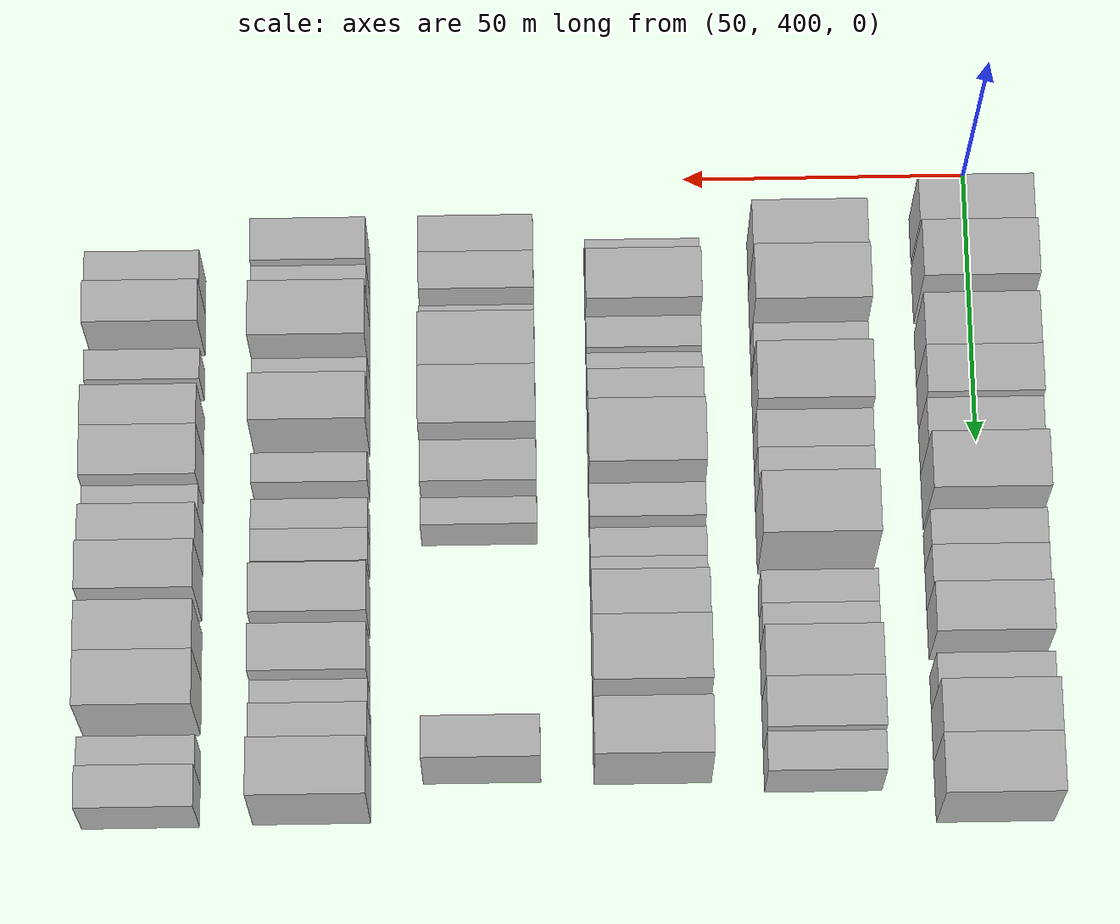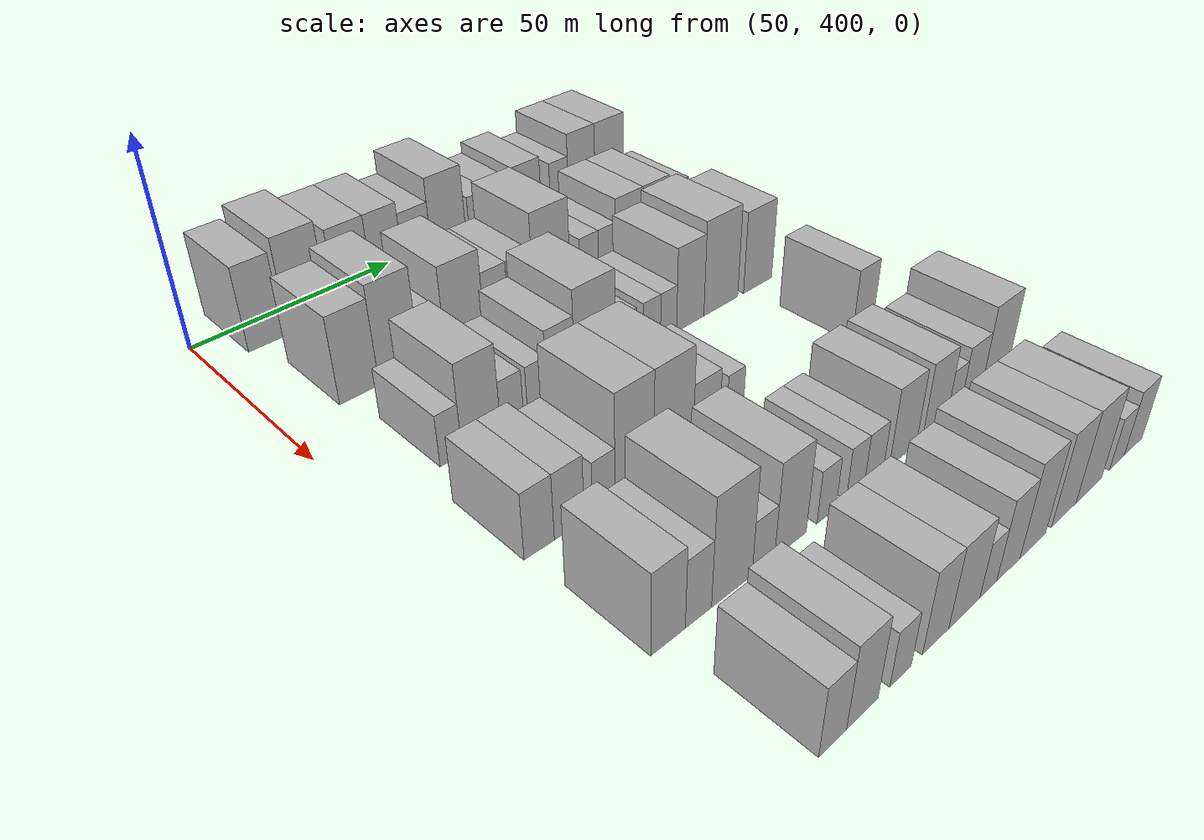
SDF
<sdf version="1.6">
 <world name="default">
  <model name="building_106">
   <static>1</static>
   <pose>50.0000 412.4515 0 0.000000 0.000000 0.000000</pose>
   <link name="link">
    <pose>0 0 10.50 0 0 0</pose>
    <collision name="collision"><geometry><box><size>20.0000 8.4818 21.0000</size></box></geometry></collision>
    <visual name="visual">
     <cast_shadows>0</cast_shadows>
     <geometry><box><size>20.0000 8.4818 21.0000</size></box></geometry>
     <material>
      <script>
       <uri>model://HANNAS_wall/materials/scripts</uri>
       <uri>model://HANNAS_wall/materials/textures</uri>
       <name>vrc/HANNAS_wall</name>
      </script>
     </material>
    </visual>
   </link>
  </model>
  <model name="building_107">
   <static>1</static>
   <pose>50.0000 422.8290 0 0.000000 0.000000 0.000000</pose>
   <link name="link">
    <pose>0 0 12.00 0 0 0</pose>
    <collision name="collision"><geometry><box><size>20.0000 10.2733 24.0000</size></box></geometry></collision>
    <visual name="visual">
     <cast_shadows>0</cast_shadows>
     <geometry><box><size>20.0000 10.2733 24.0000</size></box></geometry>
     <material>
      <script>
       <uri>model://HANNAS_wall/materials/scripts</uri>
       <uri>model://HANNAS_wall/materials/textures</uri>
       <name>vrc/HANNAS_wall</name>
      </script>
     </material>
    </visual>
   </link>
  </model>
  <model name="building_108">
   <static>1</static>
   <pose>50.0000 434.7328 0 0.000000 0.000000 0.000000</pose>
   <link name="link">
    <pose>0 0 10.50 0 0 0</pose>
    <collision name="collision"><geometry><box><size>20.0000 9.5341 21.0000</size></box></geometry></collision>
    <visual name="visual">
     <cast_shadows>0</cast_shadows>
     <geometry><box><size>20.0000 9.5341 21.0000</size></box></geometry>
     <material>
      <script>
       <uri>model://HANNAS_wall/materials/scripts</uri>
       <uri>model://HANNAS_wall/materials/textures</uri>
       <name>vrc/HANNAS_wall</name>
      </script>
     </material>
    </visual>
   </link>
  </model>
  <model name="building_109">
   <static>1</static>
   <pose>50.0000 443.7743 0 0.000000 0.000000 0.000000</pose>
   <link name="link">
    <pose>0 0 10.50 0 0 0</pose>
    <collision name="collision"><geometry><box><size>20.0000 8.5490 21.0000</size></box></geometry></collision>
    <visual name="visual">
     <cast_shadows>0</cast_shadows>
     <geometry><box><size>20.0000 8.5490 21.0000</size></box></geometry>
     <material>
      <script>
       <uri>model://HANNAS_wall/materials/scripts</uri>
       <uri>model://HANNAS_wall/materials/textures</uri>
       <name>vrc/HANNAS_wall</name>
      </script>
     </material>
    </visual>
   </link>
  </model>
  <model name="building_110">
   <static>1</static>
   <pose>50.0000 452.0813 0 0.000000 0.000000 0.000000</pose>
   <link name="link">
    <pose>0 0 9.00 0 0 0</pose>
    <collision name="collision"><geometry><box><size>20.0000 8.0650 18.0000</size></box></geometry></collision>
    <visual name="visual">
     <cast_shadows>0</cast_shadows>
     <geometry><box><size>20.0000 8.0650 18.0000</size></box></geometry>
     <material>
      <script>
       <uri>model://HANNAS_wall/materials/scripts</uri>
       <uri>model://HANNAS_wall/materials/textures</uri>
       <name>vrc/HANNAS_wall</name>
      </script>
     </material>
    </visual>
   </link>
  </model>
  <model name="building_111">
   <static>1</static>
   <pose>50.0000 461.1179 0 0.000000 0.000000 0.000000</pose>
   <link name="link">
    <pose>0 0 12.00 0 0 0</pose>
    <collision name="collision"><geometry><box><size>20.0000 10.0083 24.0000</size></box></geometry></collision>
    <visual name="visual">
     <cast_shadows>0</cast_shadows>
     <geometry><box><size>20.0000 10.0083 24.0000</size></box></geometry>
     <material>
      <script>
       <uri>model://HANNAS_wall/materials/scripts</uri>
       <uri>model://HANNAS_wall/materials/textures</uri>
       <name>vrc/HANNAS_wall</name>
      </script>
     </material>
    </visual>
   </link>
  </model>
  <model name="building_112">
   <static>1</static>
   <pose>50.0000 470.2347 0 0.000000 0.000000 0.000000</pose>
   <link name="link">
    <pose>0 0 7.50 0 0 0</pose>
    <collision name="collision"><geometry><box><size>20.0000 6.2252 15.0000</size></box></geometry></collision>
    <visual name="visual">
     <cast_shadows>0</cast_shadows>
     <geometry><box><size>20.0000 6.2252 15.0000</size></box></geometry>
     <material>
      <script>
       <uri>model://HANNAS_wall/materials/scripts</uri>
       <uri>model://HANNAS_wall/materials/textures</uri>
       <name>vrc/HANNAS_wall</name>
      </script>
     </material>
    </visual>
   </link>
  </model>
  <model name="building_113">
   <static>1</static>
   <pose>50.0000 477.0896 0 0.000000 0.000000 0.000000</pose>
   <link name="link">
    <pose>0 0 7.50 0 0 0</pose>
    <collision name="collision"><geometry><box><size>20.0000 7.4847 15.0000</size></box></geometry></collision>
    <visual name="visual">
     <cast_shadows>0</cast_shadows>
     <geometry><box><size>20.0000 7.4847 15.0000</size></box></geometry>
     <material>
      <script>
       <uri>model://HANNAS_wall/materials/scripts</uri>
       <uri>model://HANNAS_wall/materials/textures</uri>
       <name>vrc/HANNAS_wall</name>
      </script>
     </material>
    </visual>
   </link>
  </model>
  <model name="building_114">
   <static>1</static>
   <pose>50.0000 485.1602 0 0.000000 0.000000 0.000000</pose>
   <link name="link">
    <pose>0 0 9.00 0 0 0</pose>
    <collision name="collision"><geometry><box><size>20.0000 8.6565 18.0000</size></box></geometry></collision>
    <visual name="visual">
     <cast_shadows>0</cast_shadows>
     <geometry><box><size>20.0000 8.6565 18.0000</size></box></geometry>
     <material>
      <script>
       <uri>model://HANNAS_wall/materials/scripts</uri>
       <uri>model://HANNAS_wall/materials/textures</uri>
       <name>vrc/HANNAS_wall</name>
      </script>
     </material>
    </visual>
   </link>
  </model>
  <model name="building_115">
   <static>1</static>
   <pose>50.0000 495.5415 0 0.000000 0.000000 0.000000</pose>
   <link name="link">
    <pose>0 0 7.50 0 0 0</pose>
    <collision name="collision"><geometry><box><size>20.0000 6.1060 15.0000</size></box></geometry></collision>
    <visual name="visual">
     <cast_shadows>0</cast_shadows>
     <geometry><box><size>20.0000 6.1060 15.0000</size></box></geometry>
     <material>
      <script>
       <uri>model://HANNAS_wall/materials/scripts</uri>
       <uri>model://HANNAS_wall/materials/textures</uri>
       <name>vrc/HANNAS_wall</name>
      </script>
     </material>
    </visual>
   </link>
  </model>
  <model name="building_116">
   <static>1</static>
   <pose>50.0000 503.2018 0 0.000000 0.000000 0.000000</pose>
   <link name="link">
    <pose>0 0 10.50 0 0 0</pose>
    <collision name="collision"><geometry><box><size>20.0000 9.2146 21.0000</size></box></geometry></collision>
    <visual name="visual">
     <cast_shadows>0</cast_shadows>
     <geometry><box><size>20.0000 9.2146 21.0000</size></box></geometry>
     <material>
      <script>
       <uri>model://HANNAS_wall/materials/scripts</uri>
       <uri>model://HANNAS_wall/materials/textures</uri>
       <name>vrc/HANNAS_wall</name>
      </script>
     </material>
    </visual>
   </link>
  </model>
  <model name="building_117">
   <static>1</static>
   <pose>50.0000 512.9678 0 0.000000 0.000000 0.000000</pose>
   <link name="link">
    <pose>0 0 10.50 0 0 0</pose>
    <collision name="collision"><geometry><box><size>20.0000 10.3173 21.0000</size></box></geometry></collision>
    <visual name="visual">
     <cast_shadows>0</cast_shadows>
     <geometry><box><size>20.0000 10.3173 21.0000</size></box></geometry>
     <material>
      <script>
       <uri>model://HANNAS_wall/materials/scripts</uri>
       <uri>model://HANNAS_wall/materials/textures</uri>
       <name>vrc/HANNAS_wall</name>
      </script>
     </material>
    </visual>
   </link>
  </model>
  <model name="building_220">
   <static>1</static>
   <pose>79.0000 417.0556 0 0.000000 0.000000 0.000000</pose>
   <link name="link">
    <pose>0 0 10.50 0 0 0</pose>
    <collision name="collision"><geometry><box><size>20.0000 9.2861 21.0000</size></box></geometry></collision>
    <visual name="visual">
     <cast_shadows>0</cast_shadows>
     <geometry><box><size>20.0000 9.2861 21.0000</size></box></geometry>
     <material>
      <script>
       <uri>model://HANNAS_wall/materials/scripts</uri>
       <uri>model://HANNAS_wall/materials/textures</uri>
       <name>vrc/HANNAS_wall</name>
      </script>
     </material>
    </visual>
   </link>
  </model>
  <model name="building_221">
   <static>1</static>
   <pose>79.0000 426.7395 0 0.000000 0.000000 0.000000</pose>
   <link name="link">
    <pose>0 0 12.00 0 0 0</pose>
    <collision name="collision"><geometry><box><size>20.0000 10.0817 24.0000</size></box></geometry></collision>
    <visual name="visual">
     <cast_shadows>0</cast_shadows>
     <geometry><box><size>20.0000 10.0817 24.0000</size></box></geometry>
     <material>
      <script>
       <uri>model://HANNAS_wall/materials/scripts</uri>
       <uri>model://HANNAS_wall/materials/textures</uri>
       <name>vrc/HANNAS_wall</name>
      </script>
     </material>
    </visual>
   </link>
  </model>
  <model name="building_222">
   <static>1</static>
   <pose>79.0000 434.5513 0 0.000000 0.000000 0.000000</pose>
   <link name="link">
    <pose>0 0 6.00 0 0 0</pose>
    <collision name="collision"><geometry><box><size>20.0000 5.5419 12.0000</size></box></geometry></collision>
    <visual name="visual">
     <cast_shadows>0</cast_shadows>
     <geometry><box><size>20.0000 5.5419 12.0000</size></box></geometry>
     <material>
      <script>
       <uri>model://HANNAS_wall/materials/scripts</uri>
       <uri>model://HANNAS_wall/materials/textures</uri>
       <name>vrc/HANNAS_wall</name>
      </script>
     </material>
    </visual>
   </link>
  </model>
  <model name="building_223">
   <static>1</static>
   <pose>79.0000 443.5348 0 0.000000 0.000000 0.000000</pose>
   <link name="link">
    <pose>0 0 10.50 0 0 0</pose>
    <collision name="collision"><geometry><box><size>20.0000 10.4250 21.0000</size></box></geometry></collision>
    <visual name="visual">
     <cast_shadows>0</cast_shadows>
     <geometry><box><size>20.0000 10.4250 21.0000</size></box></geometry>
     <material>
      <script>
       <uri>model://HANNAS_wall/materials/scripts</uri>
       <uri>model://HANNAS_wall/materials/textures</uri>
       <name>vrc/HANNAS_wall</name>
      </script>
     </material>
    </visual>
   </link>
  </model>
  <model name="building_224">
   <static>1</static>
   <pose>79.0000 452.1346 0 0.000000 0.000000 0.000000</pose>
   <link name="link">
    <pose>0 0 7.50 0 0 0</pose>
    <collision name="collision"><geometry><box><size>20.0000 6.7746 15.0000</size></box></geometry></collision>
    <visual name="visual">
     <cast_shadows>0</cast_shadows>
     <geometry><box><size>20.0000 6.7746 15.0000</size></box></geometry>
     <material>
      <script>
       <uri>model://HANNAS_wall/materials/scripts</uri>
       <uri>model://HANNAS_wall/materials/textures</uri>
       <name>vrc/HANNAS_wall</name>
      </script>
     </material>
    </visual>
   </link>
  </model>
  <model name="building_225">
   <static>1</static>
   <pose>79.0000 459.1024 0 0.000000 0.000000 0.000000</pose>
   <link name="link">
    <pose>0 0 7.50 0 0 0</pose>
    <collision name="collision"><geometry><box><size>20.0000 7.1611 15.0000</size></box></geometry></collision>
    <visual name="visual">
     <cast_shadows>0</cast_shadows>
     <geometry><box><size>20.0000 7.1611 15.0000</size></box></geometry>
     <material>
      <script>
       <uri>model://HANNAS_wall/materials/scripts</uri>
       <uri>model://HANNAS_wall/materials/textures</uri>
       <name>vrc/HANNAS_wall</name>
      </script>
     </material>
    </visual>
   </link>
  </model>
  <model name="building_226">
   <static>1</static>
   <pose>79.0000 468.1412 0 0.000000 0.000000 0.000000</pose>
   <link name="link">
    <pose>0 0 12.00 0 0 0</pose>
    <collision name="collision"><geometry><box><size>20.0000 10.9166 24.0000</size></box></geometry></collision>
    <visual name="visual">
     <cast_shadows>0</cast_shadows>
     <geometry><box><size>20.0000 10.9166 24.0000</size></box></geometry>
     <material>
      <script>
       <uri>model://HANNAS_wall/materials/scripts</uri>
       <uri>model://HANNAS_wall/materials/textures</uri>
       <name>vrc/HANNAS_wall</name>
      </script>
     </material>
    </visual>
   </link>
  </model>
  <model name="building_227">
   <static>1</static>
   <pose>79.0000 479.4898 0 0.000000 0.000000 0.000000</pose>
   <link name="link">
    <pose>0 0 6.00 0 0 0</pose>
    <collision name="collision"><geometry><box><size>20.0000 5.7805 12.0000</size></box></geometry></collision>
    <visual name="visual">
     <cast_shadows>0</cast_shadows>
     <geometry><box><size>20.0000 5.7805 12.0000</size></box></geometry>
     <material>
      <script>
       <uri>model://HANNAS_wall/materials/scripts</uri>
       <uri>model://HANNAS_wall/materials/textures</uri>
       <name>vrc/HANNAS_wall</name>
      </script>
     </material>
    </visual>
   </link>
  </model>
  <model name="building_228">
   <static>1</static>
   <pose>79.0000 485.1522 0 0.000000 0.000000 0.000000</pose>
   <link name="link">
    <pose>0 0 6.00 0 0 0</pose>
    <collision name="collision"><geometry><box><size>20.0000 5.5443 12.0000</size></box></geometry></collision>
    <visual name="visual">
     <cast_shadows>0</cast_shadows>
     <geometry><box><size>20.0000 5.5443 12.0000</size></box></geometry>
     <material>
      <script>
       <uri>model://HANNAS_wall/materials/scripts</uri>
       <uri>model://HANNAS_wall/materials/textures</uri>
       <name>vrc/HANNAS_wall</name>
      </script>
     </material>
    </visual>
   </link>
  </model>
  <model name="building_229">
   <static>1</static>
   <pose>79.0000 492.4060 0 0.000000 0.000000 0.000000</pose>
   <link name="link">
    <pose>0 0 9.00 0 0 0</pose>
    <collision name="collision"><geometry><box><size>20.0000 8.9632 18.0000</size></box></geometry></collision>
    <visual name="visual">
     <cast_shadows>0</cast_shadows>
     <geometry><box><size>20.0000 8.9632 18.0000</size></box></geometry>
     <material>
      <script>
       <uri>model://HANNAS_wall/materials/scripts</uri>
       <uri>model://HANNAS_wall/materials/textures</uri>
       <name>vrc/HANNAS_wall</name>
      </script>
     </material>
    </visual>
   </link>
  </model>
  <model name="building_230">
   <static>1</static>
   <pose>79.0000 501.2691 0 0.000000 0.000000 0.000000</pose>
   <link name="link">
    <pose>0 0 9.00 0 0 0</pose>
    <collision name="collision"><geometry><box><size>20.0000 8.7631 18.0000</size></box></geometry></collision>
    <visual name="visual">
     <cast_shadows>0</cast_shadows>
     <geometry><box><size>20.0000 8.7631 18.0000</size></box></geometry>
     <material>
      <script>
       <uri>model://HANNAS_wall/materials/scripts</uri>
       <uri>model://HANNAS_wall/materials/textures</uri>
       <name>vrc/HANNAS_wall</name>
      </script>
     </material>
    </visual>
   </link>
  </model>
  <model name="building_231">
   <static>1</static>
   <pose>79.0000 509.0320 0 0.000000 0.000000 0.000000</pose>
   <link name="link">
    <pose>0 0 7.50 0 0 0</pose>
    <collision name="collision"><geometry><box><size>20.0000 6.7628 15.0000</size></box></geometry></collision>
    <visual name="visual">
     <cast_shadows>0</cast_shadows>
     <geometry><box><size>20.0000 6.7628 15.0000</size></box></geometry>
     <material>
      <script>
       <uri>model://HANNAS_wall/materials/scripts</uri>
       <uri>model://HANNAS_wall/materials/textures</uri>
       <name>vrc/HANNAS_wall</name>
      </script>
     </material>
    </visual>
   </link>
  </model>
  <model name="building_329">
   <static>1</static>
   <pose>108.0000 418.3809 0 0.000000 0.000000 0.000000</pose>
   <link name="link">
    <pose>0 0 6.00 0 0 0</pose>
    <collision name="collision"><geometry><box><size>20.0000 5.0788 12.0000</size></box></geometry></collision>
    <visual name="visual">
     <cast_shadows>0</cast_shadows>
     <geometry><box><size>20.0000 5.0788 12.0000</size></box></geometry>
     <material>
      <script>
       <uri>model://HANNAS_wall/materials/scripts</uri>
       <uri>model://HANNAS_wall/materials/textures</uri>
       <name>vrc/HANNAS_wall</name>
      </script>
     </material>
    </visual>
   </link>
  </model>
  <model name="building_330">
   <static>1</static>
   <pose>108.0000 425.5419 0 0.000000 0.000000 0.000000</pose>
   <link name="link">
    <pose>0 0 10.50 0 0 0</pose>
    <collision name="collision"><geometry><box><size>20.0000 9.2431 21.0000</size></box></geometry></collision>
    <visual name="visual">
     <cast_shadows>0</cast_shadows>
     <geometry><box><size>20.0000 9.2431 21.0000</size></box></geometry>
     <material>
      <script>
       <uri>model://HANNAS_wall/materials/scripts</uri>
       <uri>model://HANNAS_wall/materials/textures</uri>
       <name>vrc/HANNAS_wall</name>
      </script>
     </material>
    </visual>
   </link>
  </model>
  <model name="building_331">
   <static>1</static>
   <pose>108.0000 433.0068 0 0.000000 0.000000 0.000000</pose>
   <link name="link">
    <pose>0 0 6.00 0 0 0</pose>
    <collision name="collision"><geometry><box><size>20.0000 5.6867 12.0000</size></box></geometry></collision>
    <visual name="visual">
     <cast_shadows>0</cast_shadows>
     <geometry><box><size>20.0000 5.6867 12.0000</size></box></geometry>
     <material>
      <script>
       <uri>model://HANNAS_wall/materials/scripts</uri>
       <uri>model://HANNAS_wall/materials/textures</uri>
       <name>vrc/HANNAS_wall</name>
      </script>
     </material>
    </visual>
   </link>
  </model>
  <model name="building_332">
   <static>1</static>
   <pose>108.0000 439.3662 0 0.000000 0.000000 0.000000</pose>
   <link name="link">
    <pose>0 0 6.00 0 0 0</pose>
    <collision name="collision"><geometry><box><size>20.0000 5.0320 12.0000</size></box></geometry></collision>
    <visual name="visual">
     <cast_shadows>0</cast_shadows>
     <geometry><box><size>20.0000 5.0320 12.0000</size></box></geometry>
     <material>
      <script>
       <uri>model://HANNAS_wall/materials/scripts</uri>
       <uri>model://HANNAS_wall/materials/textures</uri>
       <name>vrc/HANNAS_wall</name>
      </script>
     </material>
    </visual>
   </link>
  </model>
  <model name="building_333">
   <static>1</static>
   <pose>108.0000 445.5948 0 0.000000 0.000000 0.000000</pose>
   <link name="link">
    <pose>0 0 9.00 0 0 0</pose>
    <collision name="collision"><geometry><box><size>20.0000 7.4253 18.0000</size></box></geometry></collision>
    <visual name="visual">
     <cast_shadows>0</cast_shadows>
     <geometry><box><size>20.0000 7.4253 18.0000</size></box></geometry>
     <material>
      <script>
       <uri>model://HANNAS_wall/materials/scripts</uri>
       <uri>model://HANNAS_wall/materials/textures</uri>
       <name>vrc/HANNAS_wall</name>
      </script>
     </material>
    </visual>
   </link>
  </model>
  <model name="building_334">
   <static>1</static>
   <pose>108.0000 454.9486 0 0.000000 0.000000 0.000000</pose>
   <link name="link">
    <pose>0 0 12.00 0 0 0</pose>
    <collision name="collision"><geometry><box><size>20.0000 11.2823 24.0000</size></box></geometry></collision>
    <visual name="visual">
     <cast_shadows>0</cast_shadows>
     <geometry><box><size>20.0000 11.2823 24.0000</size></box></geometry>
     <material>
      <script>
       <uri>model://HANNAS_wall/materials/scripts</uri>
       <uri>model://HANNAS_wall/materials/textures</uri>
       <name>vrc/HANNAS_wall</name>
      </script>
     </material>
    </visual>
   </link>
  </model>
  <model name="building_335">
   <static>1</static>
   <pose>108.0000 463.5766 0 0.000000 0.000000 0.000000</pose>
   <link name="link">
    <pose>0 0 6.00 0 0 0</pose>
    <collision name="collision"><geometry><box><size>20.0000 5.9738 12.0000</size></box></geometry></collision>
    <visual name="visual">
     <cast_shadows>0</cast_shadows>
     <geometry><box><size>20.0000 5.9738 12.0000</size></box></geometry>
     <material>
      <script>
       <uri>model://HANNAS_wall/materials/scripts</uri>
       <uri>model://HANNAS_wall/materials/textures</uri>
       <name>vrc/HANNAS_wall</name>
      </script>
     </material>
    </visual>
   </link>
  </model>
  <model name="building_336">
   <static>1</static>
   <pose>108.0000 471.1448 0 0.000000 0.000000 0.000000</pose>
   <link name="link">
    <pose>0 0 6.00 0 0 0</pose>
    <collision name="collision"><geometry><box><size>20.0000 5.1626 12.0000</size></box></geometry></collision>
    <visual name="visual">
     <cast_shadows>0</cast_shadows>
     <geometry><box><size>20.0000 5.1626 12.0000</size></box></geometry>
     <material>
      <script>
       <uri>model://HANNAS_wall/materials/scripts</uri>
       <uri>model://HANNAS_wall/materials/textures</uri>
       <name>vrc/HANNAS_wall</name>
      </script>
     </material>
    </visual>
   </link>
  </model>
  <model name="building_337">
   <static>1</static>
   <pose>108.0000 476.2127 0 0.000000 0.000000 0.000000</pose>
   <link name="link">
    <pose>0 0 6.00 0 0 0</pose>
    <collision name="collision"><geometry><box><size>20.0000 4.9732 12.0000</size></box></geometry></collision>
    <visual name="visual">
     <cast_shadows>0</cast_shadows>
     <geometry><box><size>20.0000 4.9732 12.0000</size></box></geometry>
     <material>
      <script>
       <uri>model://HANNAS_wall/materials/scripts</uri>
       <uri>model://HANNAS_wall/materials/textures</uri>
       <name>vrc/HANNAS_wall</name>
      </script>
     </material>
    </visual>
   </link>
  </model>
  <model name="building_338">
   <static>1</static>
   <pose>108.0000 483.0441 0 0.000000 0.000000 0.000000</pose>
   <link name="link">
    <pose>0 0 10.50 0 0 0</pose>
    <collision name="collision"><geometry><box><size>20.0000 8.6895 21.0000</size></box></geometry></collision>
    <visual name="visual">
     <cast_shadows>0</cast_shadows>
     <geometry><box><size>20.0000 8.6895 21.0000</size></box></geometry>
     <material>
      <script>
       <uri>model://HANNAS_wall/materials/scripts</uri>
       <uri>model://HANNAS_wall/materials/textures</uri>
       <name>vrc/HANNAS_wall</name>
      </script>
     </material>
    </visual>
   </link>
  </model>
  <model name="building_339">
   <static>1</static>
   <pose>108.0000 493.0357 0 0.000000 0.000000 0.000000</pose>
   <link name="link">
    <pose>0 0 12.00 0 0 0</pose>
    <collision name="collision"><geometry><box><size>20.0000 11.2938 24.0000</size></box></geometry></collision>
    <visual name="visual">
     <cast_shadows>0</cast_shadows>
     <geometry><box><size>20.0000 11.2938 24.0000</size></box></geometry>
     <material>
      <script>
       <uri>model://HANNAS_wall/materials/scripts</uri>
       <uri>model://HANNAS_wall/materials/textures</uri>
       <name>vrc/HANNAS_wall</name>
      </script>
     </material>
    </visual>
   </link>
  </model>
  <model name="building_340">
   <static>1</static>
   <pose>108.0000 505.6306 0 0.000000 0.000000 0.000000</pose>
   <link name="link">
    <pose>0 0 10.50 0 0 0</pose>
    <collision name="collision"><geometry><box><size>20.0000 9.8961 21.0000</size></box></geometry></collision>
    <visual name="visual">
     <cast_shadows>0</cast_shadows>
     <geometry><box><size>20.0000 9.8961 21.0000</size></box></geometry>
     <material>
      <script>
       <uri>model://HANNAS_wall/materials/scripts</uri>
       <uri>model://HANNAS_wall/materials/textures</uri>
       <name>vrc/HANNAS_wall</name>
      </script>
     </material>
    </visual>
   </link>
  </model>
  <model name="building_454">
   <static>1</static>
   <pose>137.0000 415.4255 0 0.000000 0.000000 0.000000</pose>
   <link name="link">
    <pose>0 0 7.50 0 0 0</pose>
    <collision name="collision"><geometry><box><size>20.0000 6.7138 15.0000</size></box></geometry></collision>
    <visual name="visual">
     <cast_shadows>0</cast_shadows>
     <geometry><box><size>20.0000 6.7138 15.0000</size></box></geometry>
     <material>
      <script>
       <uri>model://HANNAS_wall/materials/scripts</uri>
       <uri>model://HANNAS_wall/materials/textures</uri>
       <name>vrc/HANNAS_wall</name>
      </script>
     </material>
    </visual>
   </link>
  </model>
  <model name="building_455">
   <static>1</static>
   <pose>137.0000 422.2251 0 0.000000 0.000000 0.000000</pose>
   <link name="link">
    <pose>0 0 7.50 0 0 0</pose>
    <collision name="collision"><geometry><box><size>20.0000 6.8852 15.0000</size></box></geometry></collision>
    <visual name="visual">
     <cast_shadows>0</cast_shadows>
     <geometry><box><size>20.0000 6.8852 15.0000</size></box></geometry>
     <material>
      <script>
       <uri>model://HANNAS_wall/materials/scripts</uri>
       <uri>model://HANNAS_wall/materials/textures</uri>
       <name>vrc/HANNAS_wall</name>
      </script>
     </material>
    </visual>
   </link>
  </model>
  <model name="building_456">
   <static>1</static>
   <pose>137.0000 430.4222 0 0.000000 0.000000 0.000000</pose>
   <link name="link">
    <pose>0 0 6.00 0 0 0</pose>
    <collision name="collision"><geometry><box><size>20.0000 5.5091 12.0000</size></box></geometry></collision>
    <visual name="visual">
     <cast_shadows>0</cast_shadows>
     <geometry><box><size>20.0000 5.5091 12.0000</size></box></geometry>
     <material>
      <script>
       <uri>model://HANNAS_wall/materials/scripts</uri>
       <uri>model://HANNAS_wall/materials/textures</uri>
       <name>vrc/HANNAS_wall</name>
      </script>
     </material>
    </visual>
   </link>
  </model>
  <model name="building_457">
   <static>1</static>
   <pose>137.0000 438.0184 0 0.000000 0.000000 0.000000</pose>
   <link name="link">
    <pose>0 0 12.00 0 0 0</pose>
    <collision name="collision"><geometry><box><size>20.0000 9.6834 24.0000</size></box></geometry></collision>
    <visual name="visual">
     <cast_shadows>0</cast_shadows>
     <geometry><box><size>20.0000 9.6834 24.0000</size></box></geometry>
     <material>
      <script>
       <uri>model://HANNAS_wall/materials/scripts</uri>
       <uri>model://HANNAS_wall/materials/textures</uri>
       <name>vrc/HANNAS_wall</name>
      </script>
     </material>
    </visual>
   </link>
  </model>
  <model name="building_458">
   <static>1</static>
   <pose>137.0000 448.0868 0 0.000000 0.000000 0.000000</pose>
   <link name="link">
    <pose>0 0 12.00 0 0 0</pose>
    <collision name="collision"><geometry><box><size>20.0000 10.4533 24.0000</size></box></geometry></collision>
    <visual name="visual">
     <cast_shadows>0</cast_shadows>
     <geometry><box><size>20.0000 10.4533 24.0000</size></box></geometry>
     <material>
      <script>
       <uri>model://HANNAS_wall/materials/scripts</uri>
       <uri>model://HANNAS_wall/materials/textures</uri>
       <name>vrc/HANNAS_wall</name>
      </script>
     </material>
    </visual>
   </link>
  </model>
  <model name="building_459">
   <static>1</static>
   <pose>137.0000 457.0089 0 0.000000 0.000000 0.000000</pose>
   <link name="link">
    <pose>0 0 7.50 0 0 0</pose>
    <collision name="collision"><geometry><box><size>20.0000 7.3909 15.0000</size></box></geometry></collision>
    <visual name="visual">
     <cast_shadows>0</cast_shadows>
     <geometry><box><size>20.0000 7.3909 15.0000</size></box></geometry>
     <material>
      <script>
       <uri>model://HANNAS_wall/materials/scripts</uri>
       <uri>model://HANNAS_wall/materials/textures</uri>
       <name>vrc/HANNAS_wall</name>
      </script>
     </material>
    </visual>
   </link>
  </model>
  <model name="building_460">
   <static>1</static>
   <pose>137.0000 465.1337 0 0.000000 0.000000 0.000000</pose>
   <link name="link">
    <pose>0 0 6.00 0 0 0</pose>
    <collision name="collision"><geometry><box><size>20.0000 4.8587 12.0000</size></box></geometry></collision>
    <visual name="visual">
     <cast_shadows>0</cast_shadows>
     <geometry><box><size>20.0000 4.8587 12.0000</size></box></geometry>
     <material>
      <script>
       <uri>model://HANNAS_wall/materials/scripts</uri>
       <uri>model://HANNAS_wall/materials/textures</uri>
       <name>vrc/HANNAS_wall</name>
      </script>
     </material>
    </visual>
   </link>
  </model>
  <model name="building_461">
   <static>1</static>
   <pose>137.0000 506.4132 0 0.000000 0.000000 0.000000</pose>
   <link name="link">
    <pose>0 0 9.00 0 0 0</pose>
    <collision name="collision"><geometry><box><size>20.0000 7.2335 18.0000</size></box></geometry></collision>
    <visual name="visual">
     <cast_shadows>0</cast_shadows>
     <geometry><box><size>20.0000 7.2335 18.0000</size></box></geometry>
     <material>
      <script>
       <uri>model://HANNAS_wall/materials/scripts</uri>
       <uri>model://HANNAS_wall/materials/textures</uri>
       <name>vrc/HANNAS_wall</name>
      </script>
     </material>
    </visual>
   </link>
  </model>
  <model name="building_573">
   <static>1</static>
   <pose>166.0000 417.1547 0 0.000000 0.000000 0.000000</pose>
   <link name="link">
    <pose>0 0 9.00 0 0 0</pose>
    <collision name="collision"><geometry><box><size>20.0000 7.6879 18.0000</size></box></geometry></collision>
    <visual name="visual">
     <cast_shadows>0</cast_shadows>
     <geometry><box><size>20.0000 7.6879 18.0000</size></box></geometry>
     <material>
      <script>
       <uri>model://HANNAS_wall/materials/scripts</uri>
       <uri>model://HANNAS_wall/materials/textures</uri>
       <name>vrc/HANNAS_wall</name>
      </script>
     </material>
    </visual>
   </link>
  </model>
  <model name="building_574">
   <static>1</static>
   <pose>166.0000 424.0381 0 0.000000 0.000000 0.000000</pose>
   <link name="link">
    <pose>0 0 7.50 0 0 0</pose>
    <collision name="collision"><geometry><box><size>20.0000 6.0789 15.0000</size></box></geometry></collision>
    <visual name="visual">
     <cast_shadows>0</cast_shadows>
     <geometry><box><size>20.0000 6.0789 15.0000</size></box></geometry>
     <material>
      <script>
       <uri>model://HANNAS_wall/materials/scripts</uri>
       <uri>model://HANNAS_wall/materials/textures</uri>
       <name>vrc/HANNAS_wall</name>
      </script>
     </material>
    </visual>
   </link>
  </model>
  <model name="building_575">
   <static>1</static>
   <pose>166.0000 432.0224 0 0.000000 0.000000 0.000000</pose>
   <link name="link">
    <pose>0 0 12.00 0 0 0</pose>
    <collision name="collision"><geometry><box><size>20.0000 9.8896 24.0000</size></box></geometry></collision>
    <visual name="visual">
     <cast_shadows>0</cast_shadows>
     <geometry><box><size>20.0000 9.8896 24.0000</size></box></geometry>
     <material>
      <script>
       <uri>model://HANNAS_wall/materials/scripts</uri>
       <uri>model://HANNAS_wall/materials/textures</uri>
       <name>vrc/HANNAS_wall</name>
      </script>
     </material>
    </visual>
   </link>
  </model>
  <model name="building_576">
   <static>1</static>
   <pose>166.0000 439.8486 0 0.000000 0.000000 0.000000</pose>
   <link name="link">
    <pose>0 0 6.00 0 0 0</pose>
    <collision name="collision"><geometry><box><size>20.0000 5.7628 12.0000</size></box></geometry></collision>
    <visual name="visual">
     <cast_shadows>0</cast_shadows>
     <geometry><box><size>20.0000 5.7628 12.0000</size></box></geometry>
     <material>
      <script>
       <uri>model://HANNAS_wall/materials/scripts</uri>
       <uri>model://HANNAS_wall/materials/textures</uri>
       <name>vrc/HANNAS_wall</name>
      </script>
     </material>
    </visual>
   </link>
  </model>
  <model name="building_577">
   <static>1</static>
   <pose>166.0000 446.9593 0 0.000000 0.000000 0.000000</pose>
   <link name="link">
    <pose>0 0 10.50 0 0 0</pose>
    <collision name="collision"><geometry><box><size>20.0000 8.4586 21.0000</size></box></geometry></collision>
    <visual name="visual">
     <cast_shadows>0</cast_shadows>
     <geometry><box><size>20.0000 8.4586 21.0000</size></box></geometry>
     <material>
      <script>
       <uri>model://HANNAS_wall/materials/scripts</uri>
       <uri>model://HANNAS_wall/materials/textures</uri>
       <name>vrc/HANNAS_wall</name>
      </script>
     </material>
    </visual>
   </link>
  </model>
  <model name="building_578">
   <static>1</static>
   <pose>166.0000 456.8562 0 0.000000 0.000000 0.000000</pose>
   <link name="link">
    <pose>0 0 6.00 0 0 0</pose>
    <collision name="collision"><geometry><box><size>20.0000 5.3350 12.0000</size></box></geometry></collision>
    <visual name="visual">
     <cast_shadows>0</cast_shadows>
     <geometry><box><size>20.0000 5.3350 12.0000</size></box></geometry>
     <material>
      <script>
       <uri>model://HANNAS_wall/materials/scripts</uri>
       <uri>model://HANNAS_wall/materials/textures</uri>
       <name>vrc/HANNAS_wall</name>
      </script>
     </material>
    </visual>
   </link>
  </model>
  <model name="building_579">
   <static>1</static>
   <pose>166.0000 465.1929 0 0.000000 0.000000 0.000000</pose>
   <link name="link">
    <pose>0 0 6.00 0 0 0</pose>
    <collision name="collision"><geometry><box><size>20.0000 5.3384 12.0000</size></box></geometry></collision>
    <visual name="visual">
     <cast_shadows>0</cast_shadows>
     <geometry><box><size>20.0000 5.3384 12.0000</size></box></geometry>
     <material>
      <script>
       <uri>model://HANNAS_wall/materials/scripts</uri>
       <uri>model://HANNAS_wall/materials/textures</uri>
       <name>vrc/HANNAS_wall</name>
      </script>
     </material>
    </visual>
   </link>
  </model>
  <model name="building_580">
   <static>1</static>
   <pose>166.0000 470.7612 0 0.000000 0.000000 0.000000</pose>
   <link name="link">
    <pose>0 0 6.00 0 0 0</pose>
    <collision name="collision"><geometry><box><size>20.0000 5.7981 12.0000</size></box></geometry></collision>
    <visual name="visual">
     <cast_shadows>0</cast_shadows>
     <geometry><box><size>20.0000 5.7981 12.0000</size></box></geometry>
     <material>
      <script>
       <uri>model://HANNAS_wall/materials/scripts</uri>
       <uri>model://HANNAS_wall/materials/textures</uri>
       <name>vrc/HANNAS_wall</name>
      </script>
     </material>
    </visual>
   </link>
  </model>
  <model name="building_581">
   <static>1</static>
   <pose>166.0000 479.9857 0 0.000000 0.000000 0.000000</pose>
   <link name="link">
    <pose>0 0 9.00 0 0 0</pose>
    <collision name="collision"><geometry><box><size>20.0000 8.6510 18.0000</size></box></geometry></collision>
    <visual name="visual">
     <cast_shadows>0</cast_shadows>
     <geometry><box><size>20.0000 8.6510 18.0000</size></box></geometry>
     <material>
      <script>
       <uri>model://HANNAS_wall/materials/scripts</uri>
       <uri>model://HANNAS_wall/materials/textures</uri>
       <name>vrc/HANNAS_wall</name>
      </script>
     </material>
    </visual>
   </link>
  </model>
  <model name="building_582">
   <static>1</static>
   <pose>166.0000 490.4378 0 0.000000 0.000000 0.000000</pose>
   <link name="link">
    <pose>0 0 9.00 0 0 0</pose>
    <collision name="collision"><geometry><box><size>20.0000 8.2532 18.0000</size></box></geometry></collision>
    <visual name="visual">
     <cast_shadows>0</cast_shadows>
     <geometry><box><size>20.0000 8.2532 18.0000</size></box></geometry>
     <material>
      <script>
       <uri>model://HANNAS_wall/materials/scripts</uri>
       <uri>model://HANNAS_wall/materials/textures</uri>
       <name>vrc/HANNAS_wall</name>
      </script>
     </material>
    </visual>
   </link>
  </model>
  <model name="building_583">
   <static>1</static>
   <pose>166.0000 496.9722 0 0.000000 0.000000 0.000000</pose>
   <link name="link">
    <pose>0 0 6.00 0 0 0</pose>
    <collision name="collision"><geometry><box><size>20.0000 4.8158 12.0000</size></box></geometry></collision>
    <visual name="visual">
     <cast_shadows>0</cast_shadows>
     <geometry><box><size>20.0000 4.8158 12.0000</size></box></geometry>
     <material>
      <script>
       <uri>model://HANNAS_wall/materials/scripts</uri>
       <uri>model://HANNAS_wall/materials/textures</uri>
       <name>vrc/HANNAS_wall</name>
      </script>
     </material>
    </visual>
   </link>
  </model>
  <model name="building_584">
   <static>1</static>
   <pose>166.0000 503.0851 0 0.000000 0.000000 0.000000</pose>
   <link name="link">
    <pose>0 0 7.50 0 0 0</pose>
    <collision name="collision"><geometry><box><size>20.0000 7.4099 15.0000</size></box></geometry></collision>
    <visual name="visual">
     <cast_shadows>0</cast_shadows>
     <geometry><box><size>20.0000 7.4099 15.0000</size></box></geometry>
     <material>
      <script>
       <uri>model://HANNAS_wall/materials/scripts</uri>
       <uri>model://HANNAS_wall/materials/textures</uri>
       <name>vrc/HANNAS_wall</name>
      </script>
     </material>
    </visual>
   </link>
  </model>
  <model name="building_585">
   <static>1</static>
   <pose>166.0000 511.7395 0 0.000000 0.000000 0.000000</pose>
   <link name="link">
    <pose>0 0 10.50 0 0 0</pose>
    <collision name="collision"><geometry><box><size>20.0000 9.8990 21.0000</size></box></geometry></collision>
    <visual name="visual">
     <cast_shadows>0</cast_shadows>
     <geometry><box><size>20.0000 9.8990 21.0000</size></box></geometry>
     <material>
      <script>
       <uri>model://HANNAS_wall/materials/scripts</uri>
       <uri>model://HANNAS_wall/materials/textures</uri>
       <name>vrc/HANNAS_wall</name>
      </script>
     </material>
    </visual>
   </link>
  </model>
  <model name="building_672">
   <static>1</static>
   <pose>195.0000 421.0873 0 0.000000 0.000000 0.000000</pose>
   <link name="link">
    <pose>0 0 7.50 0 0 0</pose>
    <collision name="collision"><geometry><box><size>20.0000 6.4641 15.0000</size></box></geometry></collision>
    <visual name="visual">
     <cast_shadows>0</cast_shadows>
     <geometry><box><size>20.0000 6.4641 15.0000</size></box></geometry>
     <material>
      <script>
       <uri>model://HANNAS_wall/materials/scripts</uri>
       <uri>model://HANNAS_wall/materials/textures</uri>
       <name>vrc/HANNAS_wall</name>
      </script>
     </material>
    </visual>
   </link>
  </model>
  <model name="building_673">
   <static>1</static>
   <pose>195.0000 428.1067 0 0.000000 0.000000 0.000000</pose>
   <link name="link">
    <pose>0 0 9.00 0 0 0</pose>
    <collision name="collision"><geometry><box><size>20.0000 7.5747 18.0000</size></box></geometry></collision>
    <visual name="visual">
     <cast_shadows>0</cast_shadows>
     <geometry><box><size>20.0000 7.5747 18.0000</size></box></geometry>
     <material>
      <script>
       <uri>model://HANNAS_wall/materials/scripts</uri>
       <uri>model://HANNAS_wall/materials/textures</uri>
       <name>vrc/HANNAS_wall</name>
      </script>
     </material>
    </visual>
   </link>
  </model>
  <model name="building_674">
   <static>1</static>
   <pose>195.0000 437.6537 0 0.000000 0.000000 0.000000</pose>
   <link name="link">
    <pose>0 0 6.00 0 0 0</pose>
    <collision name="collision"><geometry><box><size>20.0000 5.5192 12.0000</size></box></geometry></collision>
    <visual name="visual">
     <cast_shadows>0</cast_shadows>
     <geometry><box><size>20.0000 5.5192 12.0000</size></box></geometry>
     <material>
      <script>
       <uri>model://HANNAS_wall/materials/scripts</uri>
       <uri>model://HANNAS_wall/materials/textures</uri>
       <name>vrc/HANNAS_wall</name>
      </script>
     </material>
    </visual>
   </link>
  </model>
  <model name="building_675">
   <static>1</static>
   <pose>195.0000 447.0392 0 0.000000 0.000000 0.000000</pose>
   <link name="link">
    <pose>0 0 9.00 0 0 0</pose>
    <collision name="collision"><geometry><box><size>20.0000 7.2518 18.0000</size></box></geometry></collision>
    <visual name="visual">
     <cast_shadows>0</cast_shadows>
     <geometry><box><size>20.0000 7.2518 18.0000</size></box></geometry>
     <material>
      <script>
       <uri>model://HANNAS_wall/materials/scripts</uri>
       <uri>model://HANNAS_wall/materials/textures</uri>
       <name>vrc/HANNAS_wall</name>
      </script>
     </material>
    </visual>
   </link>
  </model>
  <model name="building_676">
   <static>1</static>
   <pose>195.0000 455.1633 0 0.000000 0.000000 0.000000</pose>
   <link name="link">
    <pose>0 0 9.00 0 0 0</pose>
    <collision name="collision"><geometry><box><size>20.0000 8.9965 18.0000</size></box></geometry></collision>
    <visual name="visual">
     <cast_shadows>0</cast_shadows>
     <geometry><box><size>20.0000 8.9965 18.0000</size></box></geometry>
     <material>
      <script>
       <uri>model://HANNAS_wall/materials/scripts</uri>
       <uri>model://HANNAS_wall/materials/textures</uri>
       <name>vrc/HANNAS_wall</name>
      </script>
     </material>
    </visual>
   </link>
  </model>
  <model name="building_677">
   <static>1</static>
   <pose>195.0000 462.2356 0 0.000000 0.000000 0.000000</pose>
   <link name="link">
    <pose>0 0 6.00 0 0 0</pose>
    <collision name="collision"><geometry><box><size>20.0000 5.1479 12.0000</size></box></geometry></collision>
    <visual name="visual">
     <cast_shadows>0</cast_shadows>
     <geometry><box><size>20.0000 5.1479 12.0000</size></box></geometry>
     <material>
      <script>
       <uri>model://HANNAS_wall/materials/scripts</uri>
       <uri>model://HANNAS_wall/materials/textures</uri>
       <name>vrc/HANNAS_wall</name>
      </script>
     </material>
    </visual>
   </link>
  </model>
  <model name="building_678">
   <static>1</static>
   <pose>195.0000 468.5008 0 0.000000 0.000000 0.000000</pose>
   <link name="link">
    <pose>0 0 9.00 0 0 0</pose>
    <collision name="collision"><geometry><box><size>20.0000 7.3824 18.0000</size></box></geometry></collision>
    <visual name="visual">
     <cast_shadows>0</cast_shadows>
     <geometry><box><size>20.0000 7.3824 18.0000</size></box></geometry>
     <material>
      <script>
       <uri>model://HANNAS_wall/materials/scripts</uri>
       <uri>model://HANNAS_wall/materials/textures</uri>
       <name>vrc/HANNAS_wall</name>
      </script>
     </material>
    </visual>
   </link>
  </model>
  <model name="building_679">
   <static>1</static>
   <pose>195.0000 476.4341 0 0.000000 0.000000 0.000000</pose>
   <link name="link">
    <pose>0 0 10.50 0 0 0</pose>
    <collision name="collision"><geometry><box><size>20.0000 8.4843 21.0000</size></box></geometry></collision>
    <visual name="visual">
     <cast_shadows>0</cast_shadows>
     <geometry><box><size>20.0000 8.4843 21.0000</size></box></geometry>
     <material>
      <script>
       <uri>model://HANNAS_wall/materials/scripts</uri>
       <uri>model://HANNAS_wall/materials/textures</uri>
       <name>vrc/HANNAS_wall</name>
      </script>
     </material>
    </visual>
   </link>
  </model>
  <model name="building_680">
   <static>1</static>
   <pose>195.0000 487.0180 0 0.000000 0.000000 0.000000</pose>
   <link name="link">
    <pose>0 0 10.50 0 0 0</pose>
    <collision name="collision"><geometry><box><size>20.0000 8.6834 21.0000</size></box></geometry></collision>
    <visual name="visual">
     <cast_shadows>0</cast_shadows>
     <geometry><box><size>20.0000 8.6834 21.0000</size></box></geometry>
     <material>
      <script>
       <uri>model://HANNAS_wall/materials/scripts</uri>
       <uri>model://HANNAS_wall/materials/textures</uri>
       <name>vrc/HANNAS_wall</name>
      </script>
     </material>
    </visual>
   </link>
  </model>
  <model name="building_681">
   <static>1</static>
   <pose>195.0000 496.1230 0 0.000000 0.000000 0.000000</pose>
   <link name="link">
    <pose>0 0 10.50 0 0 0</pose>
    <collision name="collision"><geometry><box><size>20.0000 9.5267 21.0000</size></box></geometry></collision>
    <visual name="visual">
     <cast_shadows>0</cast_shadows>
     <geometry><box><size>20.0000 9.5267 21.0000</size></box></geometry>
     <material>
      <script>
       <uri>model://HANNAS_wall/materials/scripts</uri>
       <uri>model://HANNAS_wall/materials/textures</uri>
       <name>vrc/HANNAS_wall</name>
      </script>
     </material>
    </visual>
   </link>
  </model>
  <model name="building_682">
   <static>1</static>
   <pose>195.0000 506.7686 0 0.000000 0.000000 0.000000</pose>
   <link name="link">
    <pose>0 0 6.00 0 0 0</pose>
    <collision name="collision"><geometry><box><size>20.0000 5.7646 12.0000</size></box></geometry></collision>
    <visual name="visual">
     <cast_shadows>0</cast_shadows>
     <geometry><box><size>20.0000 5.7646 12.0000</size></box></geometry>
     <material>
      <script>
       <uri>model://HANNAS_wall/materials/scripts</uri>
       <uri>model://HANNAS_wall/materials/textures</uri>
       <name>vrc/HANNAS_wall</name>
      </script>
     </material>
    </visual>
   </link>
  </model>
  <model name="building_683">
   <static>1</static>
   <pose>195.0000 513.2984 0 0.000000 0.000000 0.000000</pose>
   <link name="link">
    <pose>0 0 7.50 0 0 0</pose>
    <collision name="collision"><geometry><box><size>20.0000 7.2949 15.0000</size></box></geometry></collision>
    <visual name="visual">
     <cast_shadows>0</cast_shadows>
     <geometry><box><size>20.0000 7.2949 15.0000</size></box></geometry>
     <material>
      <script>
       <uri>model://HANNAS_wall/materials/scripts</uri>
       <uri>model://HANNAS_wall/materials/textures</uri>
       <name>vrc/HANNAS_wall</name>
      </script>
     </material>
    </visual>
   </link>
  </model>
 </world>
</sdf>
